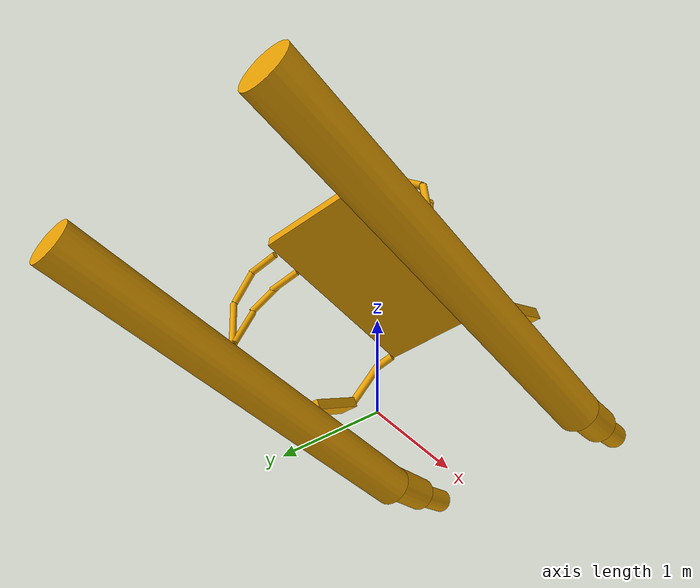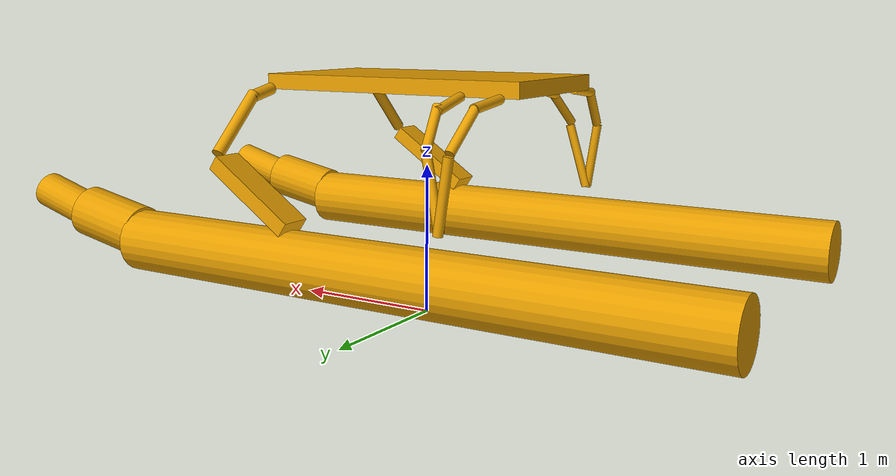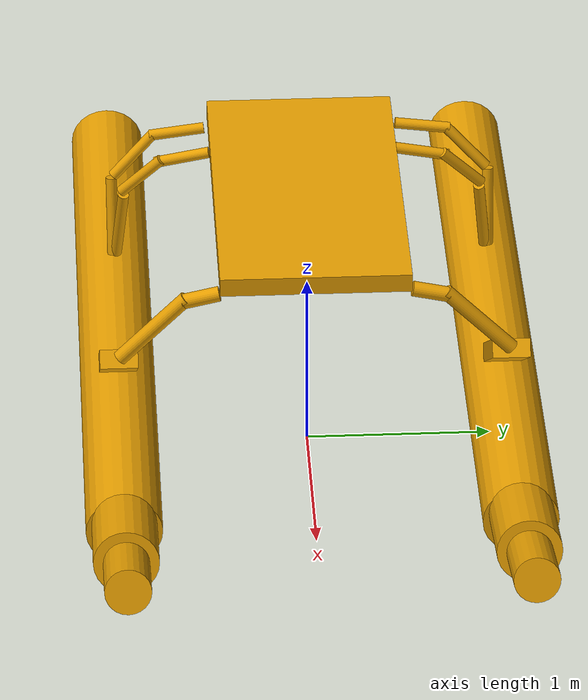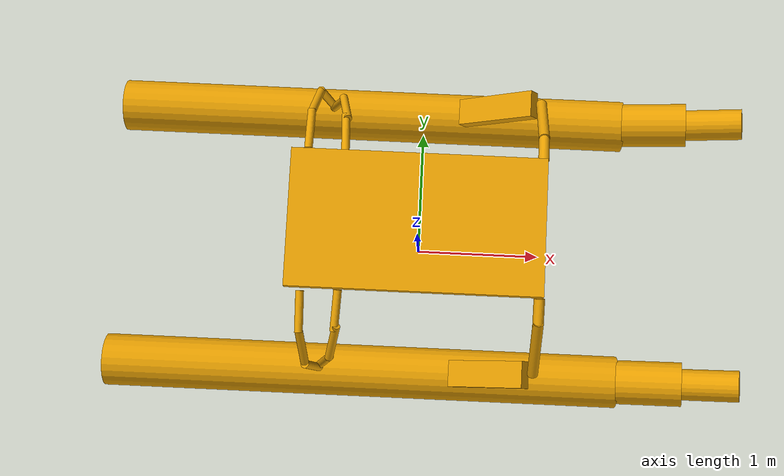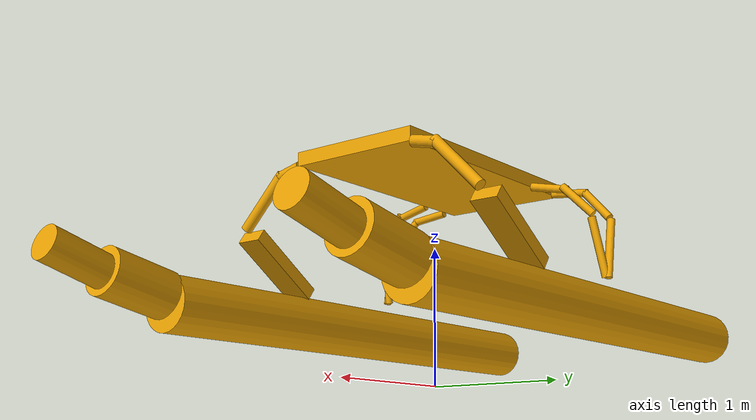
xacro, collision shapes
<?xml version="1.0"?>
<!-- WAM-V vessel only — spawned as a standalone physics model with VRX dynamics plugins -->
<robot xmlns:xacro="http://www.ros.org/wiki/xacro" name="wamv">
  <xacro:arg name="namespace" default="wamv"/>
  <xacro:property name="namespace" value="$(arg namespace)" scope="global"/>

  <xacro:include filename="$(find kuka_landing_control)/urdf/wamv_base_local.urdf.xacro"/>

  <!-- Dummy world link — gives DART a parent frame for bias force computation -->
  <link name="world">
    <inertial>
      <mass value="0.001"/>
      <inertia ixx="1e-9" ixy="0" ixz="0" iyy="1e-9" iyz="0" izz="1e-9"/>
    </inertial>
  </link>

  <joint name="world_to_wamv" type="fixed">
    <parent link="world"/>
    <child link="${namespace}/base_link"/>
    <origin xyz="0 0 0.3" rpy="0 0 0"/>
  </joint>

  <!-- VRX dynamics plugins on the vessel -->
  <gazebo>
    <plugin filename="libSurface.so" name="vrx::Surface">
      <link_name>${namespace}/base_link</link_name>
      <hull_length>4.9</hull_length>
      <hull_radius>0.213</hull_radius>
      <fluid_level>0</fluid_level>
      <points><point>0.6 1.03 0</point><point>-1.4 1.03 0</point></points>
      <wavefield>
        <topic>/vrx/wavefield/parameters</topic>
        <wave><model>PMS</model><amplitude>1.6</amplitude><period>7.0</period><gain>0.7</gain><steepness>0.5</steepness><number>5</number><scale>1.3</scale><angle>0.3</angle><tau>2.0</tau></wave>
      </wavefield>
    </plugin>
    <plugin filename="libSurface.so" name="vrx::Surface2">
      <link_name>${namespace}/base_link</link_name>
      <hull_length>4.9</hull_length>
      <hull_radius>0.213</hull_radius>
      <fluid_level>0</fluid_level>
      <points><point>0.6 -1.03 0</point><point>-1.4 -1.03 0</point></points>
      <wavefield>
        <topic>/vrx/wavefield/parameters</topic>
        <wave><model>PMS</model><amplitude>1.6</amplitude><period>7.0</period><gain>0.7</gain><steepness>0.5</steepness><number>5</number><scale>1.3</scale><angle>0.3</angle><tau>2.0</tau></wave>
      </wavefield>
    </plugin>
    <plugin filename="libSimpleHydrodynamics.so" name="vrx::SimpleHydrodynamics">
      <link_name>${namespace}/base_link</link_name>
      <xDotU>0</xDotU><yDotV>0</yDotV><nDotR>0</nDotR>
      <xU>100</xU><xUU>150</xUU><yV>100</yV><yVV>100</yVV>
      <zW>500</zW><kP>300</kP><kPP>600</kPP><mQ>900</mQ><mQQ>900</mQQ><nR>800</nR><nRR>800</nRR>
    </plugin>
    <plugin filename="libUSVWind.so" name="vrx::USVWind">
      <wind_obj><name>wamv</name><link_name>${namespace}/base_link</link_name><coeff_vector>0.5 0.5 0.33</coeff_vector></wind_obj>
      <wind_direction>240</wind_direction><wind_mean_velocity>12.0</wind_mean_velocity>
      <var_wind_gain_constants>0.5</var_wind_gain_constants><var_wind_time_constants>2</var_wind_time_constants>
    </plugin>
  </gazebo>
</robot>

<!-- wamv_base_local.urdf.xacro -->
<!-- Local copy of wamv_base.urdf.xacro with model:// mesh paths for Gazebo compatibility -->
<robot xmlns:xacro="http://ros.org/wiki/xacro" name="wam-v">
  <xacro:arg name="namespace" default="wamv"/>
  <xacro:property name="namespace" value="$(arg namespace)" scope="global" />

  <xacro:macro name="main_collisions" params="prefix reflect:=1">
    <collision name="${prefix}_float">
      <origin xyz="-0.4 ${1.03*reflect} 0.2" rpy="${0*reflect} 1.57 0" />
      <geometry>
        <cylinder length="4" radius="0.2" />
      </geometry>
    </collision>
    <collision name="${prefix}_mid_float">
      <origin xyz="1.85 ${1.03*reflect} 0.3" rpy="${0*reflect} 1.38 0" />
      <geometry>
        <cylinder length="0.5" radius="0.17" />
      </geometry>
    </collision>
    <collision name="${prefix}_front_float">
      <origin xyz="2.3 ${1.03*reflect} 0.4" rpy="${0*reflect} 1.3 0" />
      <geometry>
        <cylinder length="0.45" radius="0.12" />
      </geometry>
    </collision>
    <collision name="front_${prefix}_beam_lower">
      <origin xyz="0.9 ${0.85*reflect} 1" rpy="${0.78*reflect} 0 0" />
      <geometry>
        <cylinder length="0.5" radius="0.04" />
      </geometry>
    </collision>
    <collision name="front_${prefix}_beam_upper">
      <origin xyz="0.9 ${0.6*reflect} 1.18" rpy="${1.35*reflect} 0 0" />
      <geometry>
        <cylinder length="0.2" radius="0.04" />
      </geometry>
    </collision>
    <collision name="mid_${prefix}_beam_lower">
      <origin xyz="-0.65 ${0.99*reflect} 0.7" rpy="${0.1*reflect} 0.25 0" />
      <geometry>
        <cylinder length="0.45" radius="0.03" />
      </geometry>
    </collision>
    <collision name="mid_${prefix}_beam_medium">
      <origin xyz="-0.57 ${0.87*reflect} 1.05" rpy="${0.75*reflect} 0.25 0" />
      <geometry>
        <cylinder length="0.32" radius="0.03" />
      </geometry>
    </collision>
    <collision name="mid_${prefix}_beam_upper">
      <origin xyz="-0.55 ${0.65*reflect} 1.17" rpy="${1.35*reflect} 0.25 0" />
      <geometry>
        <cylinder length="0.3" radius="0.03" />
      </geometry>
    </collision>
    <collision name="rear_${prefix}_beam_lower">
      <origin xyz="-0.74 ${1.03*reflect} 0.7" rpy="${0*reflect} -0.15 0" />
      <geometry>
        <cylinder length="0.45" radius="0.03" />
      </geometry>
    </collision>
    <collision name="rear_${prefix}_beam_medium">
      <origin xyz="-0.79 ${0.91*reflect} 1.05" rpy="${0.75*reflect} -0.15 0" />
      <geometry>
        <cylinder length="0.32" radius="0.03" />
      </geometry>
    </collision>
    <collision name="rear_${prefix}_beam_upper">
      <origin xyz="-0.81 ${0.67*reflect} 1.18" rpy="${1.45*reflect} -0.15 0" />
      <geometry>
        <cylinder length="0.3" radius="0.03" />
      </geometry>
    </collision>
    <collision name="${prefix}_joint">
      <origin xyz="0.58 ${1.03*reflect} 0.6" rpy="${0*reflect} -0.6 0" />
      <geometry>
        <box size="0.65 0.2 0.1" />
      </geometry>
    </collision>
  </xacro:macro>

  <!-- Resolve mesh path at xacro processing time so Gazebo gets an absolute path -->
  <xacro:property name="wamv_mesh" value="$(find wamv_description)/models/WAM-V-Base/mesh/WAM-V-Base.dae"/>

  <!-- Basic model of the 16' WAM-V USV -->
  <link name="${namespace}/base_link">
    <visual>
      <geometry>
        <mesh filename="${wamv_mesh}"/>
      </geometry>
    </visual>
    <xacro:main_collisions prefix="left" reflect="1" />
    <xacro:main_collisions prefix="right" reflect="-1" />
    <collision name="top_base">
      <origin xyz="0 -0 1.25" rpy="0 0 0" />
      <geometry>
        <box size="1.85 1 0.1" />
      </geometry>
    </collision>
    <inertial>
      <mass value="180.0"/>
      <inertia ixx="120.0" ixy="0.0" ixz="0.0" iyy="393" iyz="0.0" izz="446.0"/>
    </inertial>
  </link>

  <xacro:property name="wamv_texture_dir" value="$(find wamv_description)/models/WAM-V-Base/mesh"/>

  <gazebo>
    <enable_wind>true</enable_wind>
  </gazebo>

  <gazebo reference="${namespace}/base_link">
    <visual>
      <material>
        <diffuse>1.0 1.0 1.0</diffuse>
        <specular>1.0 1.0 1.0</specular>
        <pbr>
          <metal>
            <albedo_map>file://${wamv_texture_dir}/WAM-V_Albedo.png</albedo_map>
            <normal_map>file://${wamv_texture_dir}/WAM-V_Normal.png</normal_map>
            <roughness_map>file://${wamv_texture_dir}/WAM-V_Roughness.png</roughness_map>
            <metalness_map>file://${wamv_texture_dir}/WAM-V_Metalness.png</metalness_map>
          </metal>
        </pbr>
      </material>
    </visual>
  </gazebo>

</robot>
